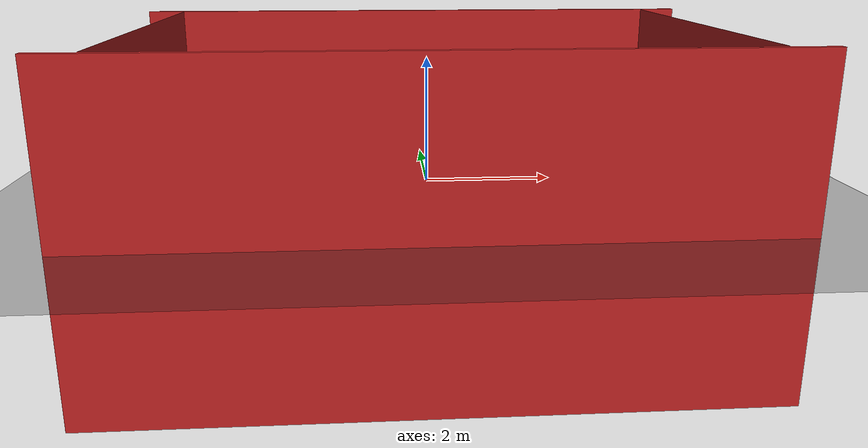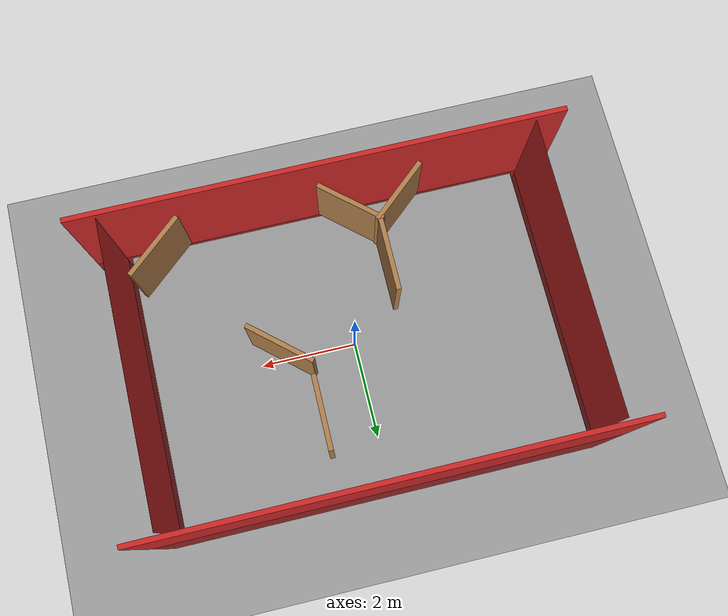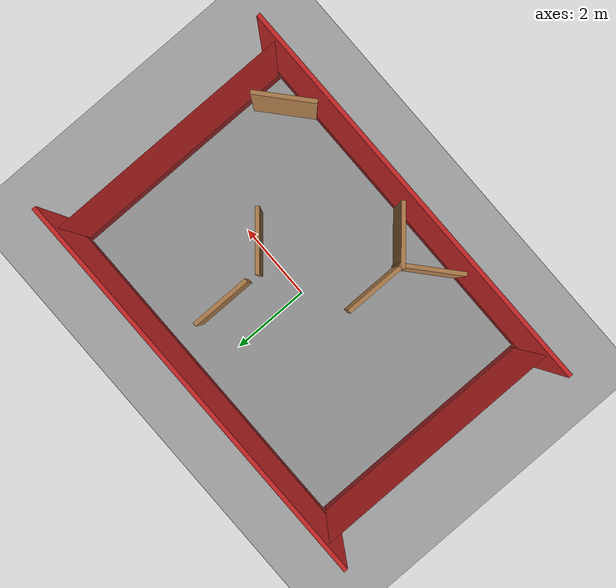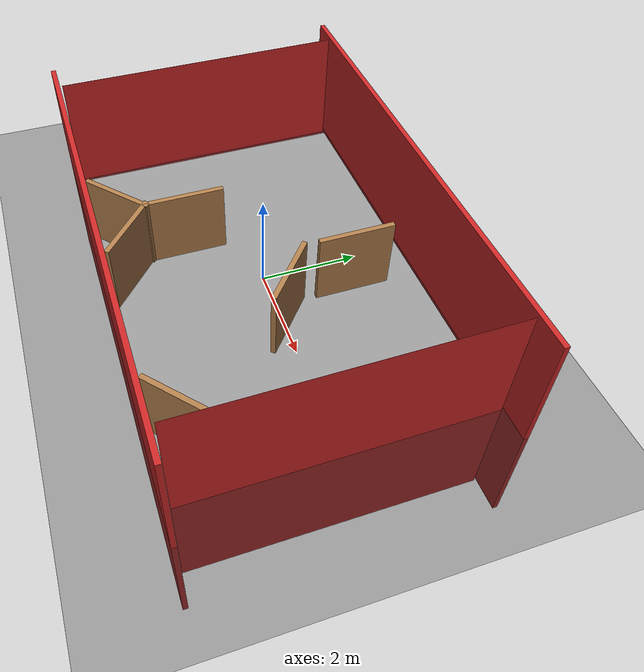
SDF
<?xml version="1.0" ?>
<sdf version="1.5">
  <world name="default">

    <physics type="ode">
      <max_step_size>0.001</max_step_size>
      <real_time_factor>1</real_time_factor>
      <real_time_update_rate>1000</real_time_update_rate>
      <ode>
        <solver>
          <type>quick</type>
          <iters>50</iters>
          <sor>1.4</sor>
        </solver>
        <constraints>
          <cfm>0</cfm>
          <erp>1</erp>
          <contact_max_correcting_vel>0</contact_max_correcting_vel>
          <contact_surface_layer>0</contact_surface_layer>
        </constraints>
      </ode>
    </physics>

    <gui fullscreen='0'>
        <camera name='user_camera'>
            <pose frame=''>-5 -0.5 10 0.00 1.16 0.00</pose>
            <view_controller>orbit</view_controller>
            <projection_type>perspective</projection_type>
        </camera>
    </gui>

    <scene>
      <ambient>0.5 0.5 0.5 1</ambient>
      <background>0.5 0.5 0.5 1</background>
      <shadows>0</shadows>
    </scene>

    <model name='ground_plane'>
        <static>1</static>
        <link name='link'>
            <collision name='collision'>
                <geometry>
                    <plane>
                    <normal>0 0 1</normal>
                    <size>100 100</size>
                    </plane>
                </geometry>
                <surface>
                    <contact>
                    <collide_bitmask>65535</collide_bitmask>
                    <ode/>
                    </contact>
                    <friction>
                    <ode>
                        <mu>100</mu>
                        <mu2>50</mu2>
                    </ode>
                    <torsional>
                        <ode/>
                    </torsional>
                    </friction>
                    <bounce/>
                </surface>
                <max_contacts>10</max_contacts>
            </collision>
            <visual name='visual'>
                <cast_shadows>0</cast_shadows>
                <geometry>
                    <plane>
                    <normal>0 0 1</normal>
                    <size>100 100</size>
                    </plane>
                </geometry>
                <material>
                    <script>
                    <uri>file://media/materials/scripts/gazebo.material</uri>
                    <name>Gazebo/Black</name>
                    </script>
                </material>
            </visual>
            <self_collide>0</self_collide>
            <enable_wind>0</enable_wind>
            <kinematic>0</kinematic>
        </link>
    </model>

    <model name='arena_plane'>
        <pose>0 0 0.01 0 0 0</pose>
        <static>1</static>
        <link name='link'>
            <visual name='visual'>
                <cast_shadows>0</cast_shadows>
                <geometry>
                    <plane>
                    <normal>0 0 1</normal>
                    <size>8.5 6</size>
                    </plane>
                </geometry>
                <material>
                    <script>
                    <uri>file://media/materials/scripts/gazebo.material</uri>
                    <name>Gazebo/Grey0</name>
                    </script>
                </material>
            </visual>
            <self_collide>0</self_collide>
            <enable_wind>0</enable_wind>
            <kinematic>0</kinematic>
        </link>
    </model>

    <model name="world_west">
        <pose>0 3.1 0 0 0 0</pose>
        <static>true</static>

        <link name="link">

            <collision name="my_collision">
                <geometry>
                <box>
                    <size>10 0.1 5</size>
                </box>
                </geometry>
            </collision>

            <visual name="visual">
                <geometry>
                <box>
                    <size>10 0.1 5</size>
                </box>
                </geometry>

                <material>
                    <script>
                    <uri>file://media/materials/scripts/gazebo.material</uri>
                    <name>Gazebo/Red</name>
                    </script>
                </material>
            </visual>
        </link>
    </model>

    <model name="world_east">
        <pose>0 -3.1 0 0 0 0</pose>
        <static>true</static>

        <link name="link">

            <collision name="my_collision">
                <geometry>
                <box>
                    <size>10 0.1 5</size>
                </box>
                </geometry>
            </collision>

            <visual name="visual">
                <geometry>
                <box>
                    <size>10 0.1 5</size>
                </box>
                </geometry>

                <material>
                    <script>
                    <uri>file://media/materials/scripts/gazebo.material</uri>
                    <name>Gazebo/Red</name>
                    </script>
                </material>
            </visual>
        </link>
    </model>

    <model name="world_north">
        <pose>4.35 0 0 0 0 0</pose>
        <static>true</static>

        <link name="link">

            <collision name="my_collision">
                <geometry>
                <box>
                    <size>0 6 5</size>
                </box>
                </geometry>
            </collision>

            <visual name="visual">
                <geometry>
                <box>
                    <size>0 6 5</size>
                </box>
                </geometry>

                <material>
                    <script>
                    <uri>file://media/materials/scripts/gazebo.material</uri>
                    <name>Gazebo/Red</name>
                    </script>
                </material>
            </visual>
        </link>
    </model>

    <model name="world_south">
        <pose>-4.35 0 0 0 0 0</pose>
        <static>true</static>

        <link name="link">

            <collision name="my_collision">
                <geometry>
                <box>
                    <size>0 6 5</size>
                </box>
                </geometry>
            </collision>

            <visual name="visual">
                <geometry>
                <box>
                    <size>0 6 5</size>
                </box>
                </geometry>

                <material>
                    <script>
                    <uri>file://media/materials/scripts/gazebo.material</uri>
                    <name>Gazebo/Red</name>
                    </script>
                </material>
            </visual>
        </link>
    </model>

    <model name="obstacle1">
        <pose>3.5 -2.5 1 0 0 0.7171</pose>
        <static>true</static>

        <link name="link">
            <inertial>
                <inertia>
                    <ixx>1</ixx>
                    <ixy>0</ixy>
                    <ixz>0</ixz>
                    <iyy>1</iyy>
                    <iyz>0</iyz>
                    <izz>1</izz>
                </inertia>
                <mass>1.0</mass>
            </inertial>

            <collision name="my_collision">
                <geometry>
                <box>
                    <size>1.5 0.1 1.5</size>
                </box>
                </geometry>
            </collision>

            <visual name="visual">
                <geometry>
                <box>
                    <size>1.5 0.1 1.5</size>
                </box>
                </geometry>

                <material>
                    <script>
                    <uri>file://media/materials/scripts/gazebo.material</uri>
                    <name>Gazebo/Wood</name>
                    </script>
                </material>
            </visual>
        </link>
    </model>

    <model name="obstacle2">
        <pose>1 1.5 1 0 0 1.57</pose>
        <static>true</static>

        <link name="link">
            <inertial>
                <inertia>
                    <ixx>1</ixx>
                    <ixy>0</ixy>
                    <ixz>0</ixz>
                    <iyy>1</iyy>
                    <iyz>0</iyz>
                    <izz>1</izz>
                </inertia>
                <mass>1.0</mass>
            </inertial>

            <collision name="my_collision">
                <geometry>
                <box>
                    <size>1.5 0.1 1.5</size>
                </box>
                </geometry>
            </collision>

            <visual name="visual">
                <geometry>
                <box>
                    <size>1.5 0.1 1.5</size>
                </box>
                </geometry>

                <material>
                    <script>
                    <uri>file://media/materials/scripts/gazebo.material</uri>
                    <name>Gazebo/Wood</name>
                    </script>
                </material>
            </visual>
        </link>
    </model>

    <model name="obstacle3">
        <pose>1.5 0 1 0 0 -0.7171</pose>
        <static>true</static>

        <link name="link">
            <inertial>
                <inertia>
                    <ixx>1</ixx>
                    <ixy>0</ixy>
                    <ixz>0</ixz>
                    <iyy>1</iyy>
                    <iyz>0</iyz>
                    <izz>1</izz>
                </inertia>
                <mass>1.0</mass>
            </inertial>

            <collision name="my_collision">
                <geometry>
                <box>
                    <size>1.5 0.1 1.5</size>
                </box>
                </geometry>
            </collision>

            <visual name="visual">
                <geometry>
                <box>
                    <size>1.5 0.1 1.5</size>
                </box>
                </geometry>

                <material>
                    <script>
                    <uri>file://media/materials/scripts/gazebo.material</uri>
                    <name>Gazebo/Wood</name>
                    </script>
                </material>
            </visual>
        </link>
    </model>

    <model name="obstacle4">
        <pose>-1 -1.25 1 0 0 1.57</pose>
        <static>true</static>

        <link name="link">
            <inertial>
                <inertia>
                    <ixx>1</ixx>
                    <ixy>0</ixy>
                    <ixz>0</ixz>
                    <iyy>1</iyy>
                    <iyz>0</iyz>
                    <izz>1</izz>
                </inertia>
                <mass>1.0</mass>
            </inertial>

            <collision name="my_collision">
                <geometry>
                <box>
                    <size>1.5 0.1 1.5</size>
                </box>
                </geometry>
            </collision>

            <visual name="visual">
                <geometry>
                <box>
                    <size>1.5 0.1 1.5</size>
                </box>
                </geometry>

                <material>
                    <script>
                    <uri>file://media/materials/scripts/gazebo.material</uri>
                    <name>Gazebo/Wood</name>
                    </script>
                </material>
            </visual>
        </link>
    </model>

    <model name="obstacle5">
        <pose>-0.5 -2.5 1 0 0 -0.7171</pose>
        <static>true</static>

        <link name="link">
            <inertial>
                <inertia>
                    <ixx>1</ixx>
                    <ixy>0</ixy>
                    <ixz>0</ixz>
                    <iyy>1</iyy>
                    <iyz>0</iyz>
                    <izz>1</izz>
                </inertia>
                <mass>1.0</mass>
            </inertial>

            <collision name="my_collision">
                <geometry>
                <box>
                    <size>1.5 0.1 1.5</size>
                </box>
                </geometry>
            </collision>

            <visual name="visual">
                <geometry>
                <box>
                    <size>1.5 0.1 1.5</size>
                </box>
                </geometry>

                <material>
                    <script>
                    <uri>file://media/materials/scripts/gazebo.material</uri>
                    <name>Gazebo/Wood</name>
                    </script>
                </material>
            </visual>
        </link>
    </model>

    <model name="obstacle6">
        <pose>-1.5 -2.5 1 0 0 0.7171</pose>
        <static>true</static>

        <link name="link">
            <inertial>
                <inertia>
                    <ixx>1</ixx>
                    <ixy>0</ixy>
                    <ixz>0</ixz>
                    <iyy>1</iyy>
                    <iyz>0</iyz>
                    <izz>1</izz>
                </inertia>
                <mass>1.0</mass>
            </inertial>

            <collision name="my_collision">
                <geometry>
                <box>
                    <size>1.5 0.1 1.5</size>
                </box>
                </geometry>
            </collision>

            <visual name="visual">
                <geometry>
                <box>
                    <size>1.5 0.1 1.5</size>
                </box>
                </geometry>

                <material>
                    <script>
                    <uri>file://media/materials/scripts/gazebo.material</uri>
                    <name>Gazebo/Wood</name>
                    </script>
                </material>
            </visual>
        </link>
    </model>

    <light name='sun1' type='directional'>
        <cast_shadows>1</cast_shadows>
        <diffuse>0.8 0.8 0.8 1</diffuse>
        <specular>0.2 0.2 0.2 1</specular>
        <attenuation>
            <range>1000</range>
            <constant>0.9</constant>
            <linear>0.01</linear>
            <quadratic>0.001</quadratic>
        </attenuation>
          <direction>0.5 0 -0.5</direction>
    </light>

    <light name='sun2' type='directional'>
      <cast_shadows>1</cast_shadows>
      <diffuse>0.8 0.8 0.8 1</diffuse>
      <specular>0.2 0.2 0.2 1</specular>
      <attenuation>
        <range>1000</range>
        <constant>0.9</constant>
        <linear>0.01</linear>
        <quadratic>0.001</quadratic>
      </attenuation>
      <direction>-0.5 0 -0.5</direction>
    </light>

    <light name='sun3' type='directional'>
      <cast_shadows>1</cast_shadows>
      <diffuse>0.8 0.8 0.8 1</diffuse>
      <specular>0.2 0.2 0.2 1</specular>
      <attenuation>
        <range>1000</range>
        <constant>0.9</constant>
        <linear>0.01</linear>
        <quadratic>0.001</quadratic>
      </attenuation>
      <direction>0 0.5 -0.5</direction>
    </light>

  </world>
</sdf>
